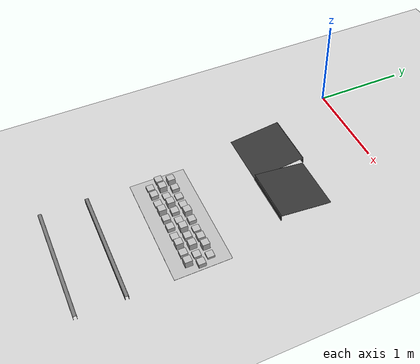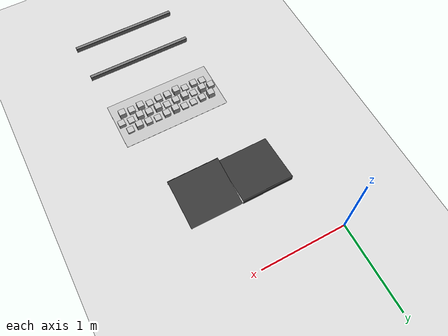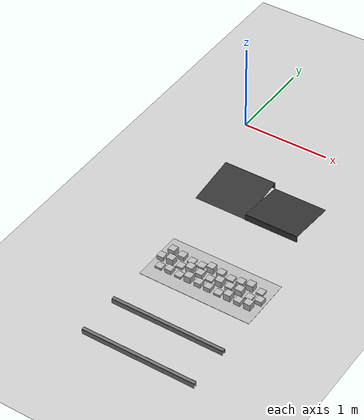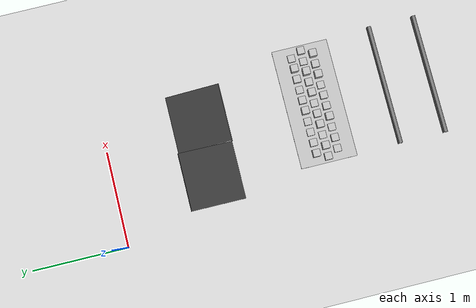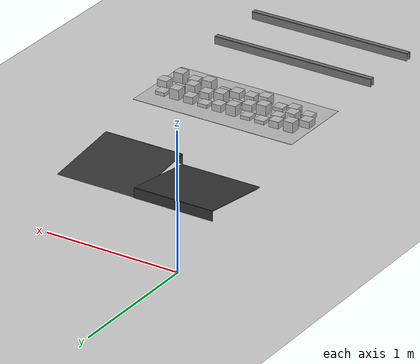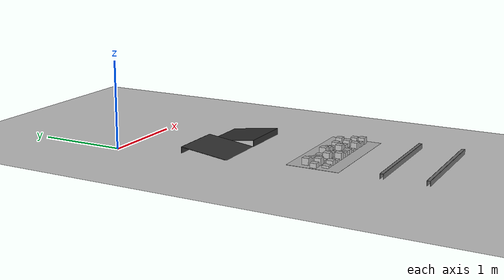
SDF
<sdf version="1.6">
 <world name="default">
  <light name="sun" type="directional">
   <pose>0 0 10 0 -0 0</pose>
   <diffuse>0.8 0.8 0.8 1</diffuse>
   <specular>0.2 0.2 0.2 1</specular>
   <attenuation>
    <range>1000</range>
    <constant>0.9</constant>
    <linear>0.01</linear>
    <quadratic>0.001</quadratic>
   </attenuation>
   <direction>-0.5 0.1 -0.9</direction>
  </light>
  <model name="ground_plane">
   <static>1</static>
   <link name="link">
    <collision name="collision">
     <geometry><plane><normal>0 0 1</normal><size>100 100</size></plane></geometry>
     <surface><friction><ode><mu>100</mu><mu2>50</mu2></ode></friction></surface>
    </collision>
    <visual name="visual">
     <cast_shadows>0</cast_shadows>
     <geometry><plane><normal>0 0 1</normal><size>100 100</size></plane></geometry>
     <material>
      <script><uri>file://media/materials/scripts/gazebo.material</uri><name>Gazebo/Grey</name></script>
     </material>
    </visual>
   </link>
  </model>
  <gravity>0 0 -9.8</gravity>
  <magnetic_field>6e-06 2.3e-05 -4.2e-05</magnetic_field>
  <atmosphere type="adiabatic"/>
  <physics name="default_physics" default="0" type="ode">
   <max_step_size>0.001</max_step_size>
   <real_time_factor>1</real_time_factor>
   <real_time_update_rate>1000</real_time_update_rate>
  </physics>
  <scene><ambient>0.4 0.4 0.4 1</ambient><background>0.7 0.7 0.7 1</background><shadows>1</shadows></scene>
  <spherical_coordinates>
   <surface_model>EARTH_WGS84</surface_model>
   <latitude_deg>0</latitude_deg>
   <longitude_deg>0</longitude_deg>
   <elevation>0</elevation>
   <heading_deg>0</heading_deg>
  </spherical_coordinates>
  <model name="frc2016_ramparts">
   <static>1</static>
   <link name="link">
    <visual name="platform">
     <pose>0 0 0.06967 0 -0 0</pose>
     <geometry><box><size>1.27 0.5969 0.003175</size></box></geometry>
    </visual>
    <collision name="platform">
     <pose>0 0 0.06967 0 -0 0</pose>
     <geometry><box><size>1.27 0.5969 0.003175</size></box></geometry>
    </collision>
    <visual name="ramp1">
     <pose>0.30472 0.00588 0.1109 -0.13 0 0</pose>
     <geometry><box><size>0.60957 0.588891 0.00462</size></box></geometry>
     <material><ambient>0.2 0.2 0.2 1</ambient><diffuse>0.2 0.2 0.2 1</diffuse></material>
    </visual>
    <collision name="ramp1">
     <pose>0.30472 0.00588 0.1109 -0.13 0 0</pose>
     <geometry><box><size>0.60957 0.588891 0.00462</size></box></geometry>
    </collision>
    <visual name="up1">
     <pose>0.30472 -0.28806 0.11072 0 -0 0</pose>
     <geometry><box><size>0.60957 0.00462 0.07872</size></box></geometry>
     <material><ambient>0.2 0.2 0.2 1</ambient><diffuse>0.2 0.2 0.2 1</diffuse></material>
    </visual>
    <collision name="up1">
     <pose>0.30472 -0.28806 0.11072 0 -0 0</pose>
     <geometry><box><size>0.60957 0.00462 0.07872</size></box></geometry>
    </collision>
    <visual name="ramp2">
     <pose>-0.30472 -0.00619 0.1109 0.13 -0 0</pose>
     <geometry><box><size>0.60957 0.588891 0.00462</size></box></geometry>
     <material><ambient>0.2 0.2 0.2 1</ambient><diffuse>0.2 0.2 0.2 1</diffuse></material>
    </visual>
    <collision name="ramp2">
     <pose>-0.30472 -0.00619 0.1109 0.13 -0 0</pose>
     <geometry><box><size>0.60957 0.588891 0.00462</size></box></geometry>
    </collision>
    <visual name="up2">
     <pose>-0.30472 0.28806 0.11072 0 -0 0</pose>
     <geometry><box><size>0.60957 0.00462 0.07872</size></box></geometry>
     <material><ambient>0.2 0.2 0.2 1</ambient><diffuse>0.2 0.2 0.2 1</diffuse></material>
    </visual>
    <collision name="up2">
     <pose>-0.30472 0.28806 0.11072 0 -0 0</pose>
     <geometry><box><size>0.60957 0.00462 0.07872</size></box></geometry>
    </collision>
   </link>
   <pose>0.811635 -0.999668 -0.080014 0 -0 0</pose>
  </model>
  <model name="frc2016_roughterrain">
   <static>1</static>
   <link name="link">
    <visual name="platform">
     <pose>0 0 0.08269 0 -0 0</pose>
     <geometry><box><size>1.27 0.5969 0.003175</size></box></geometry>
    </visual>
    <collision name="platform">
     <pose>0 0 0.08269 0 -0 0</pose>
     <geometry><box><size>1.27 0.5969 0.003175</size></box></geometry>
    </collision>
    <visual name="row1_block1_sm">
     <pose>0.51435 0.1143 0.09698 0 -0 0</pose>
     <geometry><box><size>0.0762 0.0762 0.0254</size></box></geometry>
    </visual>
    <collision name="row1_block1_sm">
     <pose>0.51435 0.1143 0.09698 0 -0 0</pose>
     <geometry><box><size>0.0762 0.0762 0.0254</size></box></geometry>
    </collision>
    <visual name="row1_block2_lg">
     <pose>0.40005 0.1143 0.12238 0 -0 0</pose>
     <geometry><box><size>0.0762 0.0762 0.0762</size></box></geometry>
    </visual>
    <collision name="row1_block2_lg">
     <pose>0.40005 0.1143 0.12238 0 -0 0</pose>
     <geometry><box><size>0.0762 0.0762 0.0762</size></box></geometry>
    </collision>
    <visual name="row1_block3_md">
     <pose>0.28575 0.1143 0.10968 0 -0 0</pose>
     <geometry><box><size>0.0762 0.0762 0.0508</size></box></geometry>
    </visual>
    <collision name="row1_block3_md">
     <pose>0.28575 0.1143 0.10968 0 -0 0</pose>
     <geometry><box><size>0.0762 0.0762 0.0508</size></box></geometry>
    </collision>
    <visual name="row1_block4_sm">
     <pose>0.17145 0.1143 0.09698 0 -0 0</pose>
     <geometry><box><size>0.0762 0.0762 0.0254</size></box></geometry>
    </visual>
    <collision name="row1_block4_sm">
     <pose>0.17145 0.1143 0.09698 0 -0 0</pose>
     <geometry><box><size>0.0762 0.0762 0.0254</size></box></geometry>
    </collision>
    <visual name="row1_block5_md">
     <pose>0.05715 0.1143 0.10968 0 -0 0</pose>
     <geometry><box><size>0.0762 0.0762 0.0508</size></box></geometry>
    </visual>
    <collision name="row1_block5_md">
     <pose>0.05715 0.1143 0.10968 0 -0 0</pose>
     <geometry><box><size>0.0762 0.0762 0.0508</size></box></geometry>
    </collision>
    <visual name="row1_block6_lg">
     <pose>-0.05715 0.1143 0.12238 0 -0 0</pose>
     <geometry><box><size>0.0762 0.0762 0.0762</size></box></geometry>
    </visual>
    <collision name="row1_block6_lg">
     <pose>-0.05715 0.1143 0.12238 0 -0 0</pose>
     <geometry><box><size>0.0762 0.0762 0.0762</size></box></geometry>
    </collision>
    <visual name="row1_block7_sm">
     <pose>-0.17145 0.1143 0.09698 0 -0 0</pose>
     <geometry><box><size>0.0762 0.0762 0.0254</size></box></geometry>
    </visual>
    <collision name="row1_block7_sm">
     <pose>-0.17145 0.1143 0.09698 0 -0 0</pose>
     <geometry><box><size>0.0762 0.0762 0.0254</size></box></geometry>
    </collision>
    <visual name="row1_block8_sm">
     <pose>-0.28575 0.1143 0.09698 0 -0 0</pose>
     <geometry><box><size>0.0762 0.0762 0.0254</size></box></geometry>
    </visual>
    <collision name="row1_block8_sm">
     <pose>-0.28575 0.1143 0.09698 0 -0 0</pose>
     <geometry><box><size>0.0762 0.0762 0.0254</size></box></geometry>
    </collision>
    <visual name="row1_block9_md">
     <pose>-0.40005 0.1143 0.10968 0 -0 0</pose>
     <geometry><box><size>0.0762 0.0762 0.0508</size></box></geometry>
    </visual>
    <collision name="row1_block9_md">
     <pose>-0.40005 0.1143 0.10968 0 -0 0</pose>
     <geometry><box><size>0.0762 0.0762 0.0508</size></box></geometry>
    </collision>
    <visual name="row1_block10_lg">
     <pose>-0.51435 0.1143 0.12238 0 -0 0</pose>
     <geometry><box><size>0.0762 0.0762 0.0762</size></box></geometry>
    </visual>
    <collision name="row1_block10_lg">
     <pose>-0.51435 0.1143 0.12238 0 -0 0</pose>
     <geometry><box><size>0.0762 0.0762 0.0762</size></box></geometry>
    </collision>
    <visual name="row2_block1_md">
     <pose>0.5715 0 0.10968 0 -0 0</pose>
     <geometry><box><size>0.0762 0.0762 0.0508</size></box></geometry>
    </visual>
    <collision name="row2_block1_md">
     <pose>0.5715 0 0.10968 0 -0 0</pose>
     <geometry><box><size>0.0762 0.0762 0.0508</size></box></geometry>
    </collision>
    <visual name="row2_block2_sm">
     <pose>0.4572 0 0.09698 0 -0 0</pose>
     <geometry><box><size>0.0762 0.0762 0.0254</size></box></geometry>
    </visual>
    <collision name="row2_block2_sm">
     <pose>0.4572 0 0.09698 0 -0 0</pose>
     <geometry><box><size>0.0762 0.0762 0.0254</size></box></geometry>
    </collision>
    <visual name="row2_block3_lg">
     <pose>0.3429 0 0.12238 0 -0 0</pose>
     <geometry><box><size>0.0762 0.0762 0.0762</size></box></geometry>
    </visual>
    <collision name="row2_block3_lg">
     <pose>0.3429 0 0.12238 0 -0 0</pose>
     <geometry><box><size>0.0762 0.0762 0.0762</size></box></geometry>
    </collision>
    <visual name="row2_block4_md">
     <pose>0.2286 0 0.10968 0 -0 0</pose>
     <geometry><box><size>0.0762 0.0762 0.0508</size></box></geometry>
    </visual>
    <collision name="row2_block4_md">
     <pose>0.2286 0 0.10968 0 -0 0</pose>
     <geometry><box><size>0.0762 0.0762 0.0508</size></box></geometry>
    </collision>
    <visual name="row2_block5_lg">
     <pose>0.1143 0 0.12238 0 -0 0</pose>
     <geometry><box><size>0.0762 0.0762 0.0762</size></box></geometry>
    </visual>
    <collision name="row2_block5_lg">
     <pose>0.1143 0 0.12238 0 -0 0</pose>
     <geometry><box><size>0.0762 0.0762 0.0762</size></box></geometry>
    </collision>
    <visual name="row2_block6_sm">
     <pose>0 0 0.09698 0 -0 0</pose>
     <geometry><box><size>0.0762 0.0762 0.0254</size></box></geometry>
    </visual>
    <collision name="row2_block6_sm">
     <pose>0 0 0.09698 0 -0 0</pose>
     <geometry><box><size>0.0762 0.0762 0.0254</size></box></geometry>
    </collision>
    <visual name="row2_block7_md">
     <pose>-0.1143 0 0.10968 0 -0 0</pose>
     <geometry><box><size>0.0762 0.0762 0.0508</size></box></geometry>
    </visual>
    <collision name="row2_block7_md">
     <pose>-0.1143 0 0.10968 0 -0 0</pose>
     <geometry><box><size>0.0762 0.0762 0.0508</size></box></geometry>
    </collision>
    <visual name="row2_block8_lg">
     <pose>-0.2286 0 0.12238 0 -0 0</pose>
     <geometry><box><size>0.0762 0.0762 0.0762</size></box></geometry>
    </visual>
    <collision name="row2_block8_lg">
     <pose>-0.2286 0 0.12238 0 -0 0</pose>
     <geometry><box><size>0.0762 0.0762 0.0762</size></box></geometry>
    </collision>
    <visual name="row2_block9_sm">
     <pose>-0.3429 0 0.09698 0 -0 0</pose>
     <geometry><box><size>0.0762 0.0762 0.0254</size></box></geometry>
    </visual>
    <collision name="row2_block9_sm">
     <pose>-0.3429 0 0.09698 0 -0 0</pose>
     <geometry><box><size>0.0762 0.0762 0.0254</size></box></geometry>
    </collision>
    <visual name="row2_block10_lg">
     <pose>-0.4572 0 0.12238 0 -0 0</pose>
     <geometry><box><size>0.0762 0.0762 0.0762</size></box></geometry>
    </visual>
    <collision name="row2_block10_lg">
     <pose>-0.4572 0 0.12238 0 -0 0</pose>
     <geometry><box><size>0.0762 0.0762 0.0762</size></box></geometry>
    </collision>
    <visual name="row2_block11_md">
     <pose>-0.5715 0 0.10968 0 -0 0</pose>
     <geometry><box><size>0.0762 0.0762 0.0508</size></box></geometry>
    </visual>
    <collision name="row2_block11_md">
     <pose>-0.5715 0 0.10968 0 -0 0</pose>
     <geometry><box><size>0.0762 0.0762 0.0508</size></box></geometry>
    </collision>
    <visual name="row3_block1_lg">
     <pose>0.51435 -0.1143 0.12238 0 -0 0</pose>
     <geometry><box><size>0.0762 0.0762 0.0762</size></box></geometry>
    </visual>
    <collision name="row3_block1_lg">
     <pose>0.51435 -0.1143 0.12238 0 -0 0</pose>
     <geometry><box><size>0.0762 0.0762 0.0762</size></box></geometry>
    </collision>
    <visual name="row3_block2_md">
     <pose>0.40005 -0.1143 0.10968 0 -0 0</pose>
     <geometry><box><size>0.0762 0.0762 0.0508</size></box></geometry>
    </visual>
    <collision name="row3_block2_md">
     <pose>0.40005 -0.1143 0.10968 0 -0 0</pose>
     <geometry><box><size>0.0762 0.0762 0.0508</size></box></geometry>
    </collision>
    <visual name="row3_block3_lg">
     <pose>0.28575 -0.1143 0.12238 0 -0 0</pose>
     <geometry><box><size>0.0762 0.0762 0.0762</size></box></geometry>
    </visual>
    <collision name="row3_block3_lg">
     <pose>0.28575 -0.1143 0.12238 0 -0 0</pose>
     <geometry><box><size>0.0762 0.0762 0.0762</size></box></geometry>
    </collision>
    <visual name="row3_block4_sm">
     <pose>0.17145 -0.1143 0.09698 0 -0 0</pose>
     <geometry><box><size>0.0762 0.0762 0.0254</size></box></geometry>
    </visual>
    <collision name="row3_block4_sm">
     <pose>0.17145 -0.1143 0.09698 0 -0 0</pose>
     <geometry><box><size>0.0762 0.0762 0.0254</size></box></geometry>
    </collision>
    <visual name="row3_block5_md">
     <pose>0.05715 -0.1143 0.10968 0 -0 0</pose>
     <geometry><box><size>0.0762 0.0762 0.0508</size></box></geometry>
    </visual>
    <collision name="row3_block5_md">
     <pose>0.05715 -0.1143 0.10968 0 -0 0</pose>
     <geometry><box><size>0.0762 0.0762 0.0508</size></box></geometry>
    </collision>
    <visual name="row3_block6_md">
     <pose>-0.05715 -0.1143 0.10968 0 -0 0</pose>
     <geometry><box><size>0.0762 0.0762 0.0508</size></box></geometry>
    </visual>
    <collision name="row3_block6_md">
     <pose>-0.05715 -0.1143 0.10968 0 -0 0</pose>
     <geometry><box><size>0.0762 0.0762 0.0508</size></box></geometry>
    </collision>
    <visual name="row3_block7_lg">
     <pose>-0.17145 -0.1143 0.12238 0 -0 0</pose>
     <geometry><box><size>0.0762 0.0762 0.0762</size></box></geometry>
    </visual>
    <collision name="row3_block7_lg">
     <pose>-0.17145 -0.1143 0.12238 0 -0 0</pose>
     <geometry><box><size>0.0762 0.0762 0.0762</size></box></geometry>
    </collision>
    <visual name="row3_block8_sm">
     <pose>-0.28575 -0.1143 0.09698 0 -0 0</pose>
     <geometry><box><size>0.0762 0.0762 0.0254</size></box></geometry>
    </visual>
    <collision name="row3_block8_sm">
     <pose>-0.28575 -0.1143 0.09698 0 -0 0</pose>
     <geometry><box><size>0.0762 0.0762 0.0254</size></box></geometry>
    </collision>
    <visual name="row3_block9_md">
     <pose>-0.40005 -0.1143 0.10968 0 -0 0</pose>
     <geometry><box><size>0.0762 0.0762 0.0508</size></box></geometry>
    </visual>
    <collision name="row3_block9_md">
     <pose>-0.40005 -0.1143 0.10968 0 -0 0</pose>
     <geometry><box><size>0.0762 0.0762 0.0508</size></box></geometry>
    </collision>
    <visual name="row3_block10_sm">
     <pose>-0.51435 -0.1143 0.09698 0 -0 0</pose>
     <geometry><box><size>0.0762 0.0762 0.0254</size></box></geometry>
    </visual>
    <collision name="row3_block10_sm">
     <pose>-0.51435 -0.1143 0.09698 0 -0 0</pose>
     <geometry><box><size>0.0762 0.0762 0.0254</size></box></geometry>
    </collision>
   </link>
   <pose>0.991321 -2.21228 -0.085083 0 -0 0</pose>
  </model>
  <model name="frc2016_moat">
   <static>1</static>
   <link name="link">
    <inertial>
     <mass>10</mass>
     <pose>0 0 0.06738 0 -0 0</pose>
     <inertia><ixx>0.312195</ixx><ixy>0</ixy><ixz>0</ixz><iyy>1.35927</iyy><iyz>0</iyz><izz>1.64109</izz></inertia>
    </inertial>
    <visual name="platform">
     <pose>0 0 0.0381 0 -0 0</pose>
     <geometry><box><size>1.27 0.5969 0.0762</size></box></geometry>
    </visual>
    <collision name="platform">
     <pose>0 0 0.0381 0 -0 0</pose>
     <geometry><box><size>1.27 0.5969 0.0762</size></box></geometry>
    </collision>
    <visual name="tube1_side1">
     <pose>0 -0.25876 0.10301 0 -0 0</pose>
     <geometry><box><size>1.27 0.003175 0.0635</size></box></geometry>
     <material><ambient>0.46 0.46 0.46 1</ambient><diffuse>0.46 0.46 0.46 1</diffuse></material>
    </visual>
    <collision name="tube1_side1">
     <pose>0 -0.25876 0.10301 0 -0 0</pose>
     <geometry><box><size>1.27 0.003175 0.0635</size></box></geometry>
    </collision>
    <visual name="tube1_side2">
     <pose>0 -0.22384 0.10301 0 -0 0</pose>
     <geometry><box><size>1.27 0.003175 0.0635</size></box></geometry>
     <material><ambient>0.46 0.46 0.46 1</ambient><diffuse>0.46 0.46 0.46 1</diffuse></material>
    </visual>
    <collision name="tube1_side2">
     <pose>0 -0.22384 0.10301 0 -0 0</pose>
     <geometry><box><size>1.27 0.003175 0.0635</size></box></geometry>
    </collision>
    <visual name="tube1_top">
     <pose>0 -0.2413 0.13317 0 -0 0</pose>
     <geometry><box><size>1.27 0.0381 0.003175</size></box></geometry>
     <material><ambient>0.46 0.46 0.46 1</ambient><diffuse>0.46 0.46 0.46 1</diffuse></material>
    </visual>
    <collision name="tube1_top">
     <pose>0 -0.2413 0.13317 0 -0 0</pose>
     <geometry><box><size>1.27 0.0381 0.003175</size></box></geometry>
    </collision>
    <visual name="tube2_side1">
     <pose>0 0.22384 0.10301 0 -0 0</pose>
     <geometry><box><size>1.27 0.003175 0.0635</size></box></geometry>
     <material><ambient>0.46 0.46 0.46 1</ambient><diffuse>0.46 0.46 0.46 1</diffuse></material>
    </visual>
    <collision name="tube2_side1">
     <pose>0 0.22384 0.10301 0 -0 0</pose>
     <geometry><box><size>1.27 0.003175 0.0635</size></box></geometry>
    </collision>
    <visual name="tube2_side2">
     <pose>0 0.25876 0.10301 0 -0 0</pose>
     <geometry><box><size>1.27 0.003175 0.0635</size></box></geometry>
     <material><ambient>0.46 0.46 0.46 1</ambient><diffuse>0.46 0.46 0.46 1</diffuse></material>
    </visual>
    <collision name="tube2_side2">
     <pose>0 0.25876 0.10301 0 -0 0</pose>
     <geometry><box><size>1.27 0.003175 0.0635</size></box></geometry>
    </collision>
    <visual name="tube2_top">
     <pose>0 0.2413 0.13317 0 -0 0</pose>
     <geometry><box><size>1.27 0.0381 0.003175</size></box></geometry>
     <material><ambient>0.46 0.46 0.46 1</ambient><diffuse>0.46 0.46 0.46 1</diffuse></material>
    </visual>
    <collision name="tube2_top">
     <pose>0 0.2413 0.13317 0 -0 0</pose>
     <geometry><box><size>1.27 0.0381 0.003175</size></box></geometry>
    </collision>
   </link>
   <pose>1.00351 -3.21151 -0.079377 0 -0 0</pose>
  </model>
  <light name="user_point_light_0" type="point">
   <pose>0.841125 -1.68729 1 0 -0 0</pose>
   <diffuse>0.5 0.5 0.5 1</diffuse>
   <specular>0.1 0.1 0.1 1</specular>
   <attenuation>
    <range>20</range>
    <constant>0.5</constant>
    <linear>0.01</linear>
    <quadratic>0.001</quadratic>
   </attenuation>
   <cast_shadows>0</cast_shadows>
   <direction>0 0 -1</direction>
  </light>
 </world>
</sdf>
